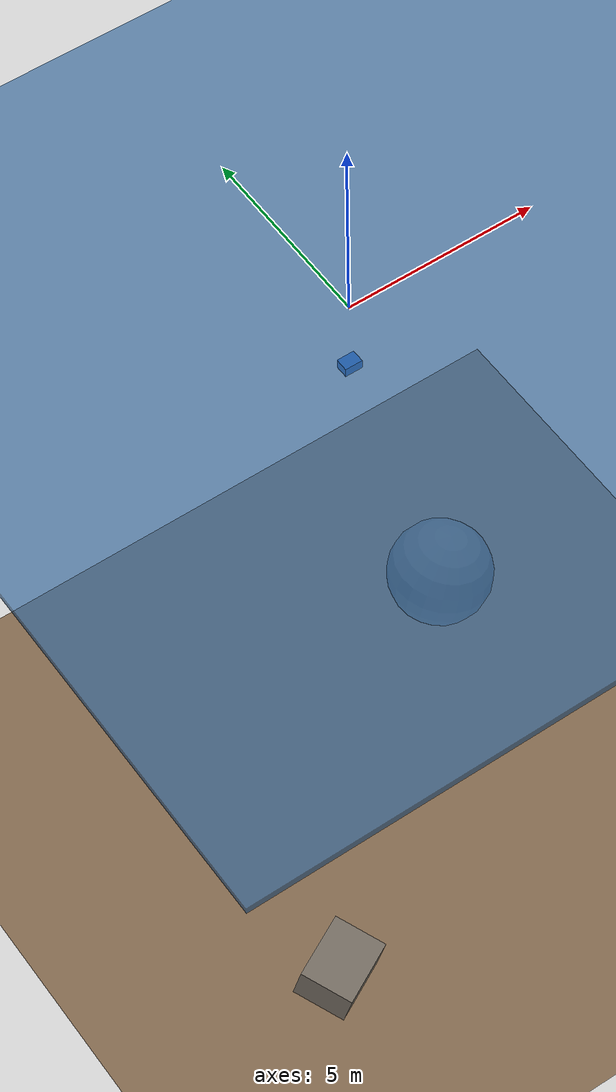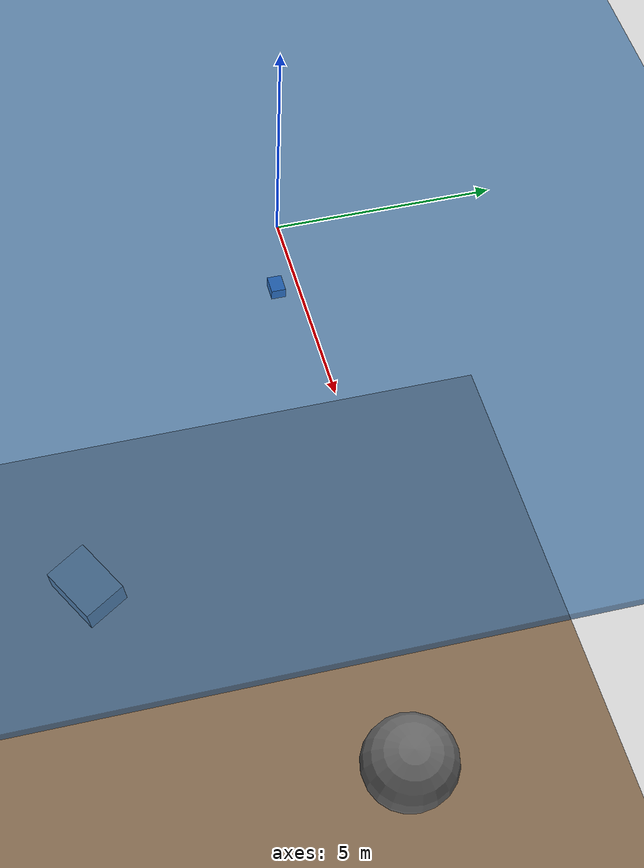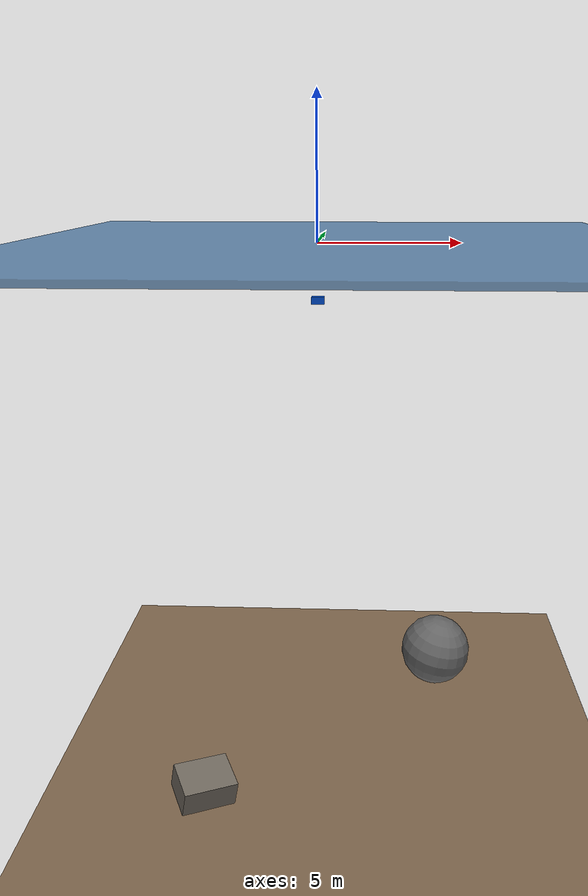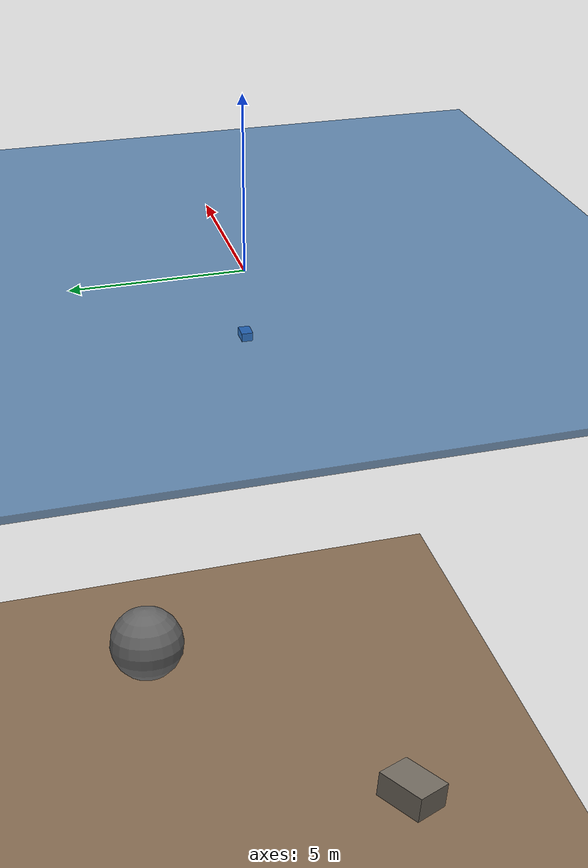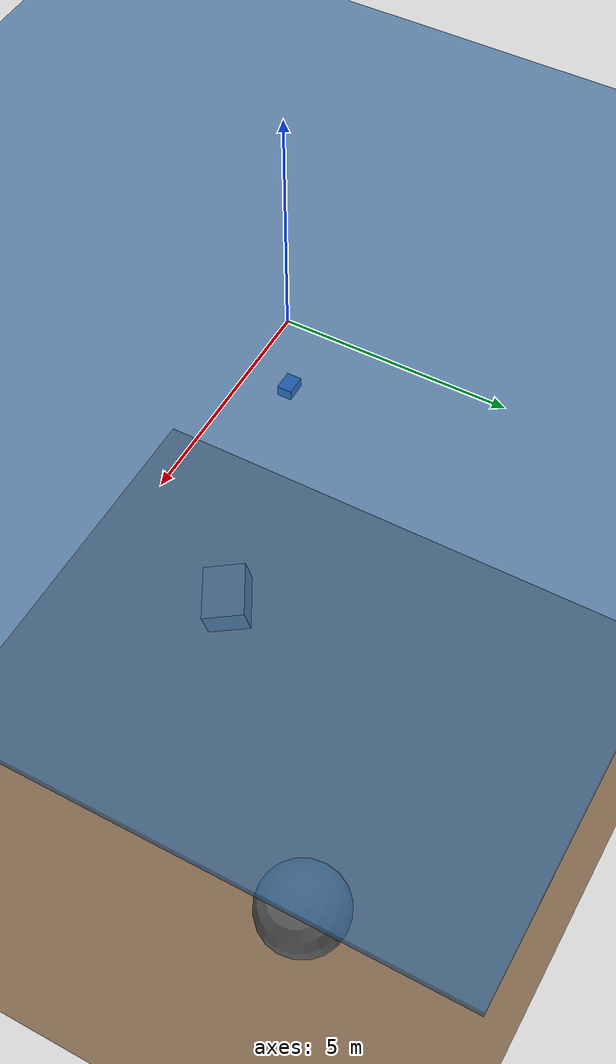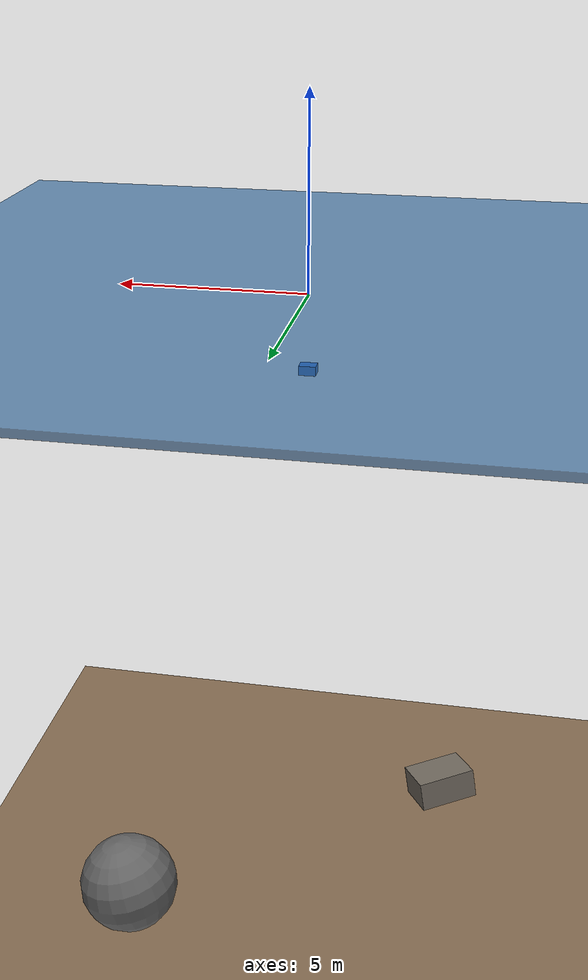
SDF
<?xml version="1.0"?>
<sdf version="1.8">
  <world name="underwater_world">
    <!-- Physics -->
    <physics name="1ms" type="dart">
      <max_step_size>0.001</max_step_size>
      <real_time_factor>1.0</real_time_factor>
    </physics>

    <!-- Plugins -->
    <plugin filename="gz-sim-physics-system" name="gz::sim::systems::Physics"/>
    <plugin filename="gz-sim-user-commands-system" name="gz::sim::systems::UserCommands"/>
    <plugin filename="gz-sim-scene-broadcaster-system" name="gz::sim::systems::SceneBroadcaster"/>
    <plugin filename="gz-sim-sensors-system" name="gz::sim::systems::Sensors">
      <render_engine>ogre2</render_engine>
    </plugin>
    <plugin filename="gz-sim-imu-system" name="gz::sim::systems::Imu"/>
    <plugin filename="gz-sim-buoyancy-system" name="gz::sim::systems::Buoyancy">
      <uniform_fluid_density>1025</uniform_fluid_density>
    </plugin>

    <!-- Lighting -->
    <light type="directional" name="sun">
      <cast_shadows>true</cast_shadows>
      <pose>0 0 100 0 0 0</pose>
      <diffuse>0.6 0.7 0.8 1</diffuse>
      <specular>0.3 0.3 0.3 1</specular>
      <attenuation>
        <range>1000</range>
        <constant>0.9</constant>
        <linear>0.01</linear>
        <quadratic>0.001</quadratic>
      </attenuation>
      <direction>-0.5 0.1 -0.9</direction>
    </light>

    <!-- Ambient light (underwater blue tint) -->
    <scene>
      <ambient>0.2 0.3 0.5 1</ambient>
      <background>0.1 0.2 0.4 1</background>
      <shadows>true</shadows>
    </scene>

    <!-- Ground plane (sea floor) -->
    <model name="sea_floor">
      <static>true</static>
      <pose>0 0 -20 0 0 0</pose>
      <link name="link">
        <collision name="collision">
          <geometry>
            <plane>
              <normal>0 0 1</normal>
              <size>200 200</size>
            </plane>
          </geometry>
        </collision>
        <visual name="visual">
          <geometry>
            <plane>
              <normal>0 0 1</normal>
              <size>200 200</size>
            </plane>
          </geometry>
          <material>
            <ambient>0.4 0.35 0.25 1</ambient>
            <diffuse>0.5 0.4 0.3 1</diffuse>
            <specular>0.1 0.1 0.1 1</specular>
          </material>
        </visual>
      </link>
    </model>

    <!-- Water surface plane (visual only) -->
    <model name="water_surface">
      <static>true</static>
      <pose>0 0 0 0 0 0</pose>
      <link name="link">
        <visual name="visual">
          <geometry>
            <plane>
              <normal>0 0 1</normal>
              <size>200 200</size>
            </plane>
          </geometry>
          <material>
            <ambient>0.1 0.3 0.5 0.7</ambient>
            <diffuse>0.2 0.4 0.6 0.7</diffuse>
            <specular>0.9 0.9 0.9 0.5</specular>
          </material>
          <transparency>0.3</transparency>
        </visual>
      </link>
    </model>

    <!-- Some underwater obstacles -->
    <model name="rock_1">
      <static>true</static>
      <pose>5 3 -18 0.1 0.2 0.3</pose>
      <link name="link">
        <collision name="collision">
          <geometry>
            <sphere><radius>1.5</radius></sphere>
          </geometry>
        </collision>
        <visual name="visual">
          <geometry>
            <sphere><radius>1.5</radius></sphere>
          </geometry>
          <material>
            <ambient>0.3 0.3 0.3 1</ambient>
            <diffuse>0.4 0.4 0.4 1</diffuse>
          </material>
        </visual>
      </link>
    </model>

    <model name="rock_2">
      <static>true</static>
      <pose>-4 -5 -19 0.2 0.1 0.5</pose>
      <link name="link">
        <collision name="collision">
          <geometry>
            <box><size>2 1.5 1</size></box>
          </geometry>
        </collision>
        <visual name="visual">
          <geometry>
            <box><size>2 1.5 1</size></box>
          </geometry>
          <material>
            <ambient>0.35 0.32 0.28 1</ambient>
            <diffuse>0.45 0.42 0.38 1</diffuse>
          </material>
        </visual>
      </link>
    </model>

    <!-- Simple BlueROV2-like model for testing -->
    <model name="bluerov2">
      <pose>0 0 -2 0 0 0</pose>
      <link name="base_link">
        <inertial>
          <mass>11.5</mass>
          <inertia>
            <ixx>0.16</ixx>
            <ixy>0</ixy>
            <ixz>0</ixz>
            <iyy>0.16</iyy>
            <iyz>0</iyz>
            <izz>0.16</izz>
          </inertia>
        </inertial>

        <collision name="collision">
          <geometry>
            <box><size>0.457 0.338 0.254</size></box>
          </geometry>
        </collision>

        <visual name="visual">
          <geometry>
            <box><size>0.457 0.338 0.254</size></box>
          </geometry>
          <material>
            <ambient>0.0 0.2 0.6 1</ambient>
            <diffuse>0.0 0.3 0.8 1</diffuse>
            <specular>0.5 0.5 0.5 1</specular>
          </material>
        </visual>

        <!-- IMU sensor -->
        <sensor name="imu" type="imu">
          <always_on>1</always_on>
          <update_rate>100</update_rate>
          <imu>
            <angular_velocity>
              <x><noise type="gaussian"><mean>0</mean><stddev>0.01</stddev></noise></x>
              <y><noise type="gaussian"><mean>0</mean><stddev>0.01</stddev></noise></y>
              <z><noise type="gaussian"><mean>0</mean><stddev>0.01</stddev></noise></z>
            </angular_velocity>
            <linear_acceleration>
              <x><noise type="gaussian"><mean>0</mean><stddev>0.1</stddev></noise></x>
              <y><noise type="gaussian"><mean>0</mean><stddev>0.1</stddev></noise></y>
              <z><noise type="gaussian"><mean>0</mean><stddev>0.1</stddev></noise></z>
            </linear_acceleration>
          </imu>
        </sensor>
      </link>

      <!-- Odometry plugin -->
      <plugin filename="gz-sim-odometry-publisher-system"
              name="gz::sim::systems::OdometryPublisher">
        <odom_frame>world</odom_frame>
        <robot_base_frame>bluerov2/base_link</robot_base_frame>
        <odom_topic>/model/bluerov2/odometry</odom_topic>
        <dimensions>3</dimensions>
      </plugin>

      <!-- Velocity control plugin -->
      <plugin filename="gz-sim-velocity-control-system"
              name="gz::sim::systems::VelocityControl">
        <topic>/model/bluerov2/cmd_vel</topic>
      </plugin>
    </model>

  </world>
</sdf>
